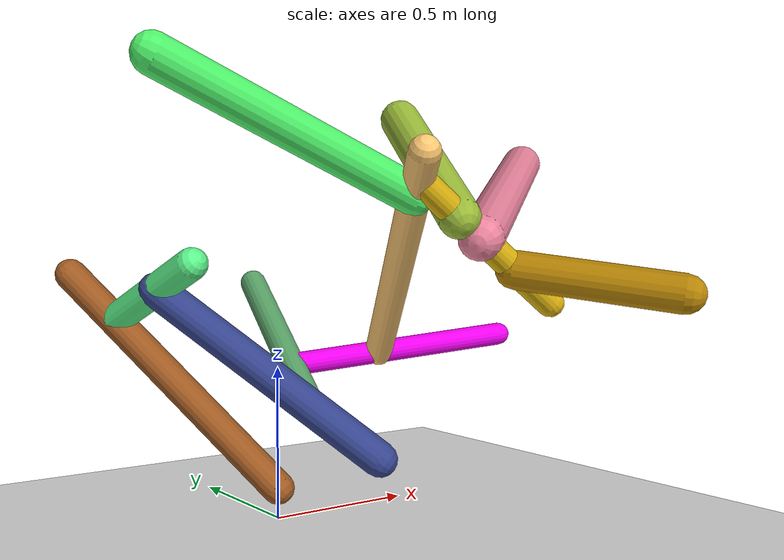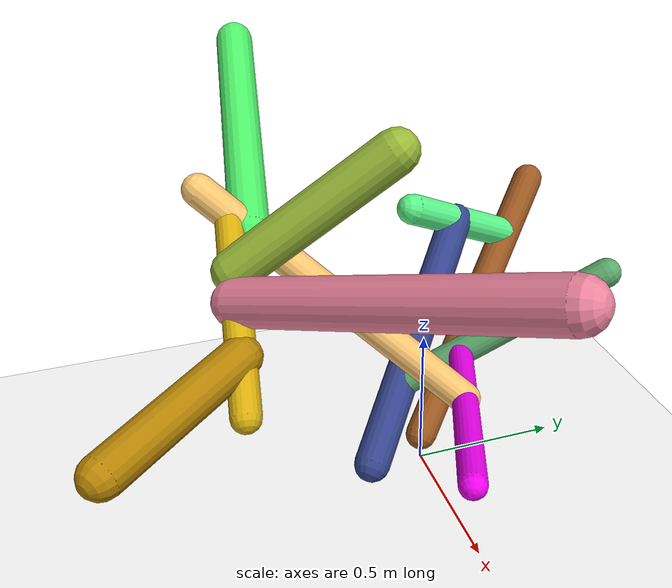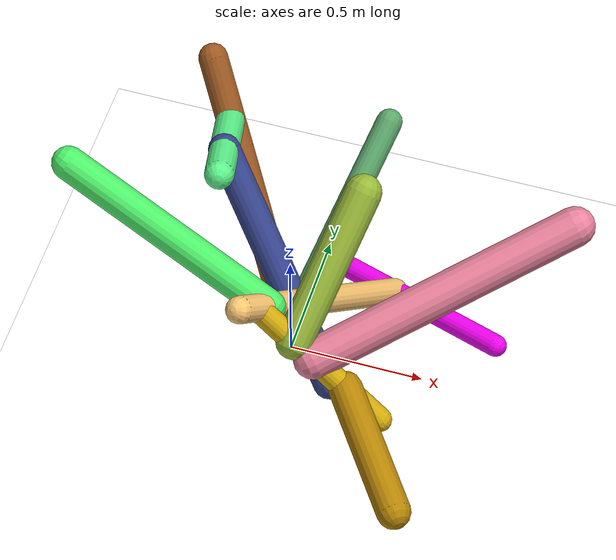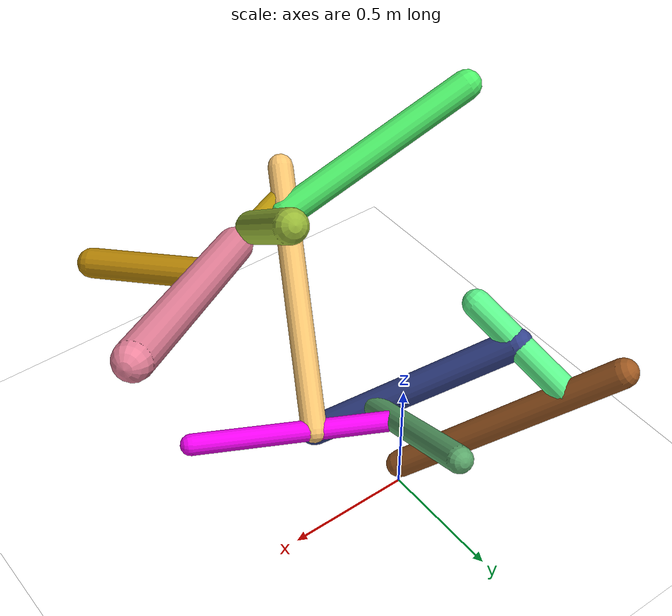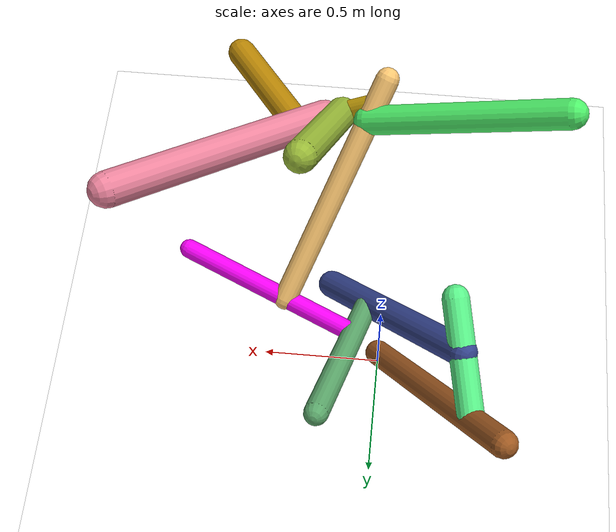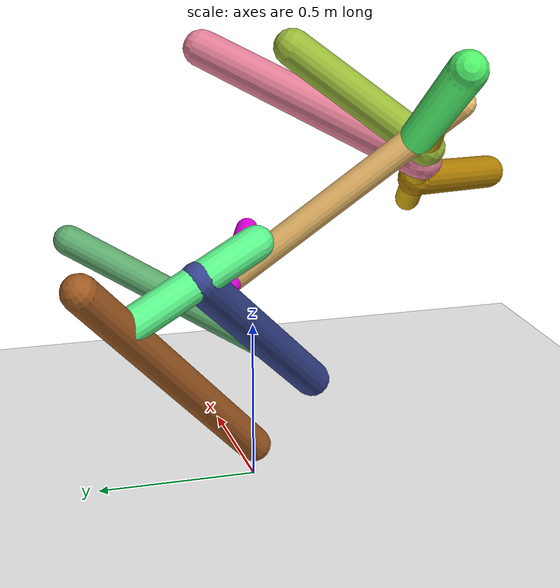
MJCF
<mujoco model="morphology">
  <option timestep="0.01"/>
  <default>
    <default class="/"/>
    <default class="0/"/>
    <default class="0/1/"/>
    <default class="0/1/2/"/>
    <default class="0/1/2/3/"/>
    <default class="0/1/2/3/4/"/>
    <default class="0/1/2/3/4/5/"/>
    <default class="0/1/2/3/4/5/6/"/>
    <default class="0/1/2/3/4/5/7/"/>
    <default class="0/1/2/3/4/5/7/8/"/>
    <default class="0/1/2/3/4/5/7/9/"/>
    <default class="0/1/2/3/4/5/7/10/"/>
  </default>
  <asset>
    <texture name="texplane" type="2d" builtin="checker" rgb1="0.10000000000000001 0.20000000000000001 0.29999999999999999" rgb2="0.20000000000000001 0.29999999999999999 0.40000000000000002" width="300" height="300"/>
    <material name="MatPlane" class="/" texture="texplane" texrepeat="20 20" specular="1" shininess="1" reflectance="0.5"/>
  </asset>
  <worldbody>
    <light name="//unnamed_light_0" class="/" directional="true" pos="0 0 1.5" dir="0 0 -1.3" cutoff="100" exponent="1" diffuse="1 1 1" specular="0.10000000000000001 0.10000000000000001 0.10000000000000001"/>
    <geom name="ground" class="/" type="plane" size="15 15 0.5" material="MatPlane" rgba="1 1 1 1"/>
    <site name="body" class="/" size="9.9999999999999995e-07 9.9999999999999995e-07 9.9999999999999995e-07" pos="0 0 0.10000000000000001"/>
    <body pos="0 0 0.10000000000000001" name="0/">
      <freejoint name="0/"/>
      <geom name="0/geom" class="0/" type="capsule" contype="1" conaffinity="1" condim="3" size="0.054507168964480435" rgba="0.62453659283921414 0.35127093726801051 0.13264525095161073 1" friction="0.59999999999999998 0.10000000000000001 0.10000000000000001" fromto="0 0 0 -0.47782906776087697 0.60289610987872799 0.70110744806416259"/>
      <site name="0/end0" class="0/" size="0.0050000000000000001" pos="-0.47782906776087697 0.60289610987872799 0.70110744806416259"/>
      <site name="0/attach1" class="0/" size="9.9999999999999995e-07 9.9999999999999995e-07 9.9999999999999995e-07" pos="-0.37178074090435209 0.46909068020791811 0.5455052111339882"/>
      <body pos="-0.37178074090435209 0.46909068020791811 0.5455052111339882" name="0/1/">
        <joint name="0/1/joint/" class="0/" type="hinge" axis="0 0 1" limited="true" range="-46.941618258758034 46.941618258758034"/>
        <geom name="0/1/geom" class="0/1/" type="capsule" contype="1" conaffinity="1" condim="3" size="0.053397911091499009" rgba="0.35703282944848747 0.95921609927979223 0.54367943420057374 1" friction="0.59999999999999998 0.10000000000000001 0.10000000000000001" fromto="0 0 0 0.094912398398448561 -0.40941290420990467 0.19776220794332899"/>
        <site name="0/1/end1" class="0/1/" size="0.0050000000000000001" pos="0.094912398398448561 -0.40941290420990467 0.19776220794332899"/>
        <site name="0/1/attach2" class="0/1/" size="9.9999999999999995e-07 9.9999999999999995e-07 9.9999999999999995e-07" pos="0.053048165939884581 -0.22882788810457569 0.11053268698968166"/>
        <body pos="0.053048165939884581 -0.22882788810457569 0.11053268698968166" name="0/1/2/">
          <joint name="0/1/2/joint/" class="0/1/" type="hinge" axis="0.97889928331289056 0.18400154348040226 -0.088879835319036538" limited="true" range="-57.35434846707939 57.35434846707939"/>
          <geom name="0/1/2/geom" class="0/1/2/" type="capsule" contype="1" conaffinity="1" condim="3" size="0.058498902455957388" rgba="0.20629463175000951 0.26519814324474433 0.55359092312412106 1" friction="0.59999999999999998 0.10000000000000001 0.10000000000000001" fromto="0 0 0 0.54423130843692968 -0.49984575675627285 -0.54233497869187386"/>
          <site name="0/1/2/end2" class="0/1/2/" size="0.0050000000000000001" pos="0.54423130843692968 -0.49984575675627285 -0.54233497869187386"/>
          <site name="0/1/2/attach3" class="0/1/2/" size="9.9999999999999995e-07 9.9999999999999995e-07 9.9999999999999995e-07" pos="0.37825386874207162 -0.34740484117017612 -0.37693587389069461"/>
          <body pos="0.37825386874207162 -0.34740484117017612 -0.37693587389069461" name="0/1/2/3/">
            <joint name="0/1/2/3/joint/" class="0/1/2/" type="hinge" axis="0 -0.73532433675295628 0.67771536781957697" limited="true" range="-68.047700978646233 68.047700978646233"/>
            <geom name="0/1/2/3/geom" class="0/1/2/3/" type="capsule" contype="1" conaffinity="1" condim="3" size="0.047681439258531064" rgba="0.36061347943699162 0.65778041739896276 0.42045307785985231 1" friction="0.59999999999999998 0.10000000000000001 0.10000000000000001" fromto="0 0 0 0.14911600088260679 0.63995662927067287 0.38039596653990992"/>
            <site name="0/1/2/3/end3" class="0/1/2/3/" size="0.0050000000000000001" pos="0.14911600088260679 0.63995662927067287 0.38039596653990992"/>
            <site name="0/1/2/3/attach4" class="0/1/2/3/" size="9.9999999999999995e-07 9.9999999999999995e-07 9.9999999999999995e-07" pos="0.045250738608270287 0.19420122575950019 0.11543495230326807"/>
            <body pos="0.045250738608270287 0.19420122575950019 0.11543495230326807" name="0/1/2/3/4/">
              <joint name="0/1/2/3/4/joint/" class="0/1/2/3/" type="hinge" axis="5.5511151231257827e-17 -0.51095750751741875 0.85960597107720638" limited="true" range="-33.847037841946324 33.847037841946324"/>
              <geom name="0/1/2/3/4/geom" class="0/1/2/3/4/" type="capsule" contype="1" conaffinity="1" condim="3" size="0.039131892345375716" rgba="0.94286008612857419 0.0030921355780813009 0.94060806899888749 1" friction="0.59999999999999998 0.10000000000000001 0.10000000000000001" fromto="0 0 0 0.7005754277901759 -0.27598148006891771 0.090976021610610358"/>
              <site name="0/1/2/3/4/end4" class="0/1/2/3/4/" size="0.0050000000000000001" pos="0.7005754277901759 -0.27598148006891771 0.090976021610610358"/>
              <site name="0/1/2/3/4/attach5" class="0/1/2/3/4/" size="9.9999999999999995e-07 9.9999999999999995e-07 9.9999999999999995e-07" pos="0.28828507294583045 -0.11356570321674915 0.037436410107993846"/>
              <body pos="0.28828507294583045 -0.11356570321674915 0.037436410107993846" name="0/1/2/3/4/5/">
                <joint name="0/1/2/3/4/5/joint/" class="0/1/2/3/4/" type="hinge" axis="0.38313570921628054 0.87725697883267839 -0.28918371567690199" limited="true" range="-62.712404817235061 62.712404817235061"/>
                <geom name="0/1/2/3/4/5/geom" class="0/1/2/3/4/5/" type="capsule" contype="1" conaffinity="1" condim="3" size="0.047216132642779782" rgba="0.9859398175762506 0.77863056951092324 0.44415725421471663 1" friction="0.59999999999999998 0.10000000000000001 0.10000000000000001" fromto="0 0 0 -0.34553371325959009 -0.67072308343969544 0.62072627155992377"/>
                <site name="0/1/2/3/4/5/end5" class="0/1/2/3/4/5/" size="0.0050000000000000001" pos="-0.34553371325959009 -0.67072308343969544 0.62072627155992377"/>
                <site name="0/1/2/3/4/5/attach6" class="0/1/2/3/4/5/" size="9.9999999999999995e-07 9.9999999999999995e-07 9.9999999999999995e-07" pos="-0.28370090976391066 -0.550698069882811 0.50964812172643492"/>
                <body pos="-0.28370090976391066 -0.550698069882811 0.50964812172643492" name="0/1/2/3/4/5/6/">
                  <joint name="0/1/2/3/4/5/6/joint/" class="0/1/2/3/4/5/" type="hinge" axis="-5.5511151231257827e-17 0.67922324239237108 0.73393173183477645" limited="true" range="-43.941008244774324 43.941008244774324"/>
                  <geom name="0/1/2/3/4/5/6/geom" class="0/1/2/3/4/5/6/" type="capsule" contype="1" conaffinity="1" condim="3" size="0.057982811104787556" rgba="0.30313304735417368 0.93799296736612459 0.41083379298432654 1" friction="0.59999999999999998 0.10000000000000001 0.10000000000000001" fromto="0 0 0 -0.7302288581640517 0.13250327115746741 0.33618848724113404"/>
                  <site name="0/1/2/3/4/5/6/end6" class="0/1/2/3/4/5/6/" size="0.0050000000000000001" pos="-0.7302288581640517 0.13250327115746741 0.33618848724113404"/>
                </body>
                <site name="0/1/2/3/4/5/attach7" class="0/1/2/3/4/5/" size="9.9999999999999995e-07 9.9999999999999995e-07 9.9999999999999995e-07" pos="-0.30809243207736176 -0.59804498981584597 0.55346572366307889"/>
                <body pos="-0.30809243207736176 -0.59804498981584597 0.55346572366307889" name="0/1/2/3/4/5/7/">
                  <joint name="0/1/2/3/4/5/7/joint/" class="0/1/2/3/4/5/" type="hinge" axis="-5.5511151231257827e-17 0.67922324239237108 0.73393173183477645" limited="true" range="-35.102558863621539 35.102558863621539"/>
                  <geom name="0/1/2/3/4/5/7/geom" class="0/1/2/3/4/5/7/" type="capsule" contype="1" conaffinity="1" condim="3" size="0.042535218294033263" rgba="0.83812721638333321 0.67711312003624724 0.050167494477075691 1" friction="0.59999999999999998 0.10000000000000001 0.10000000000000001" fromto="0 0 0 0.4480986362328534 -0.074606804955300809 -0.35674386236400091"/>
                  <site name="0/1/2/3/4/5/7/end7" class="0/1/2/3/4/5/7/" size="0.0050000000000000001" pos="0.4480986362328534 -0.074606804955300809 -0.35674386236400091"/>
                  <site name="0/1/2/3/4/5/7/attach8" class="0/1/2/3/4/5/7/" size="9.9999999999999995e-07 9.9999999999999995e-07 9.9999999999999995e-07" pos="0.32157950672336305 -0.053541826722419208 -0.25601844328307211"/>
                  <body pos="0.32157950672336305 -0.053541826722419208 -0.25601844328307211" name="0/1/2/3/4/5/7/8/">
                    <joint name="0/1/2/3/4/5/7/8/joint/" class="0/1/2/3/4/5/7/" type="hinge" axis="0 -0.97882390627401505 0.20470408033666077" limited="true" range="-31.556038239038863 31.556038239038863"/>
                    <geom name="0/1/2/3/4/5/7/8/geom" class="0/1/2/3/4/5/7/8/" type="capsule" contype="1" conaffinity="1" condim="3" size="0.05845452067537478" rgba="0.71355697004662977 0.51681506580840531 0.019434842609058478 1" friction="0.59999999999999998 0.10000000000000001 0.10000000000000001" fromto="0 0 0 0.2805831406680368 -0.38398842541537626 -0.063627580683590312"/>
                    <site name="0/1/2/3/4/5/7/8/end8" class="0/1/2/3/4/5/7/8/" size="0.0050000000000000001" pos="0.2805831406680368 -0.38398842541537626 -0.063627580683590312"/>
                  </body>
                  <site name="0/1/2/3/4/5/7/attach9" class="0/1/2/3/4/5/7/" size="9.9999999999999995e-07 9.9999999999999995e-07 9.9999999999999995e-07" pos="0.13303031277174671 -0.022149066735715043 -0.10590915426268491"/>
                  <body pos="0.13303031277174671 -0.022149066735715043 -0.10590915426268491" name="0/1/2/3/4/5/7/9/">
                    <geom name="0/1/2/3/4/5/7/9/geom" class="0/1/2/3/4/5/7/9/" type="capsule" contype="1" conaffinity="1" condim="3" size="0.06298010226397413" rgba="0.59950815211373953 0.726614511772677 0.21966665697619048 1" friction="0.59999999999999998 0.10000000000000001 0.10000000000000001" fromto="0 0 0 0.11207620653979156 0.42097731368328484 0.32856564210748118"/>
                    <site name="0/1/2/3/4/5/7/9/end9" class="0/1/2/3/4/5/7/9/" size="0.0050000000000000001" pos="0.11207620653979156 0.42097731368328484 0.32856564210748118"/>
                  </body>
                  <site name="0/1/2/3/4/5/7/attach10" class="0/1/2/3/4/5/7/" size="9.9999999999999995e-07 9.9999999999999995e-07 9.9999999999999995e-07" pos="0.20421436677726534 -0.03400095469896601 -0.1625807714274829"/>
                  <body pos="0.20421436677726534 -0.03400095469896601 -0.1625807714274829" name="0/1/2/3/4/5/7/10/">
                    <joint name="0/1/2/3/4/5/7/10/joint/" class="0/1/2/3/4/5/7/" type="hinge" axis="0.63099049001553076 0.15880749424336793 0.75936235176765454" limited="true" range="-38.56528929622273 38.56528929622273"/>
                    <geom name="0/1/2/3/4/5/7/10/geom" class="0/1/2/3/4/5/7/10/" type="capsule" contype="1" conaffinity="1" condim="3" size="0.068832747492141882" rgba="0.9165553878447299 0.51317213389381156 0.61101350381814057 1" friction="0.59999999999999998 0.10000000000000001 0.10000000000000001" fromto="0 0 0 0.73242111526828202 0.57453593540450631 0.28618324958334806"/>
                    <site name="0/1/2/3/4/5/7/10/end10" class="0/1/2/3/4/5/7/10/" size="0.0050000000000000001" pos="0.73242111526828202 0.57453593540450631 0.28618324958334806"/>
                  </body>
                </body>
              </body>
            </body>
          </body>
        </body>
      </body>
      <camera name="0/iso" class="0/" mode="trackcom" pos="-2.2999999999999998 -2.2999999999999998 1" xyaxes="0.45000000000000001 -0.45000000000000001 0 0.29999999999999999 0.14999999999999999 0.93999999999999995"/>
    </body>
  </worldbody>
  <actuator>
    <motor name="0/1/motor" class="0/1/" ctrllimited="true" ctrlrange="-1 1" gear="58" joint="0/1/joint/"/>
    <motor name="0/1/2/motor" class="0/1/2/" ctrllimited="true" ctrlrange="-1 1" gear="67" joint="0/1/2/joint/"/>
    <motor name="0/1/2/3/motor" class="0/1/2/3/" ctrllimited="true" ctrlrange="-1 1" gear="80" joint="0/1/2/3/joint/"/>
    <motor name="0/1/2/3/4/motor" class="0/1/2/3/4/" ctrllimited="true" ctrlrange="-1 1" gear="58" joint="0/1/2/3/4/joint/"/>
    <motor name="0/1/2/3/4/5/motor" class="0/1/2/3/4/5/" ctrllimited="true" ctrlrange="-1 1" gear="64" joint="0/1/2/3/4/5/joint/"/>
    <motor name="0/1/2/3/4/5/6/motor" class="0/1/2/3/4/5/6/" ctrllimited="true" ctrlrange="-1 1" gear="90" joint="0/1/2/3/4/5/6/joint/"/>
    <motor name="0/1/2/3/4/5/7/motor" class="0/1/2/3/4/5/7/" ctrllimited="true" ctrlrange="-1 1" gear="50" joint="0/1/2/3/4/5/7/joint/"/>
    <motor name="0/1/2/3/4/5/7/8/motor" class="0/1/2/3/4/5/7/8/" ctrllimited="true" ctrlrange="-1 1" gear="72" joint="0/1/2/3/4/5/7/8/joint/"/>
    <motor name="0/1/2/3/4/5/7/10/motor" class="0/1/2/3/4/5/7/10/" ctrllimited="true" ctrlrange="-1 1" gear="82" joint="0/1/2/3/4/5/7/10/joint/"/>
  </actuator>
  <sensor>
    <subtreelinvel name="velocity" body="0/"/>
  </sensor>
</mujoco>
